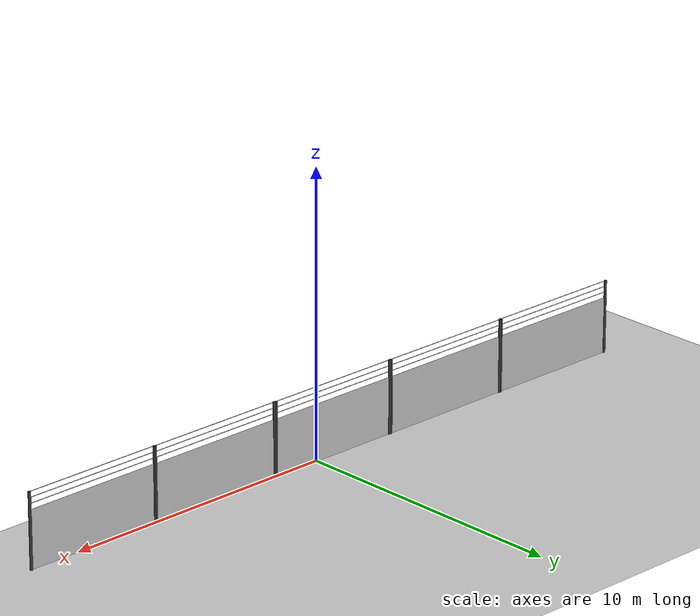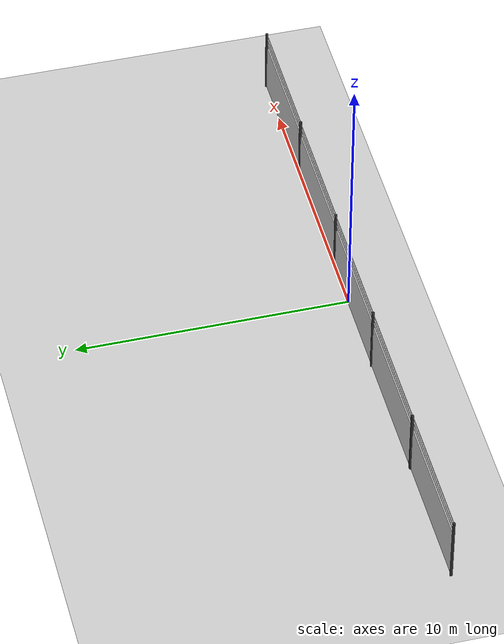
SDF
<sdf version="1.7">
 <world name="default">
  <light name="sun" type="directional">
   <pose>0 0 10 0 -0 0</pose>
   <diffuse>0.8 0.8 0.8 1</diffuse>
   <specular>0.2 0.2 0.2 1</specular>
   <attenuation>
    <range>1000</range>
    <constant>0.9</constant>
    <linear>0.01</linear>
    <quadratic>0.001</quadratic>
   </attenuation>
   <direction>-0.5 0.1 -0.9</direction>
   <spot><inner_angle>0</inner_angle><outer_angle>0</outer_angle><falloff>0</falloff></spot>
  </light>
  <model name="ground_plane">
   <static>1</static>
   <link name="link">
    <collision name="collision">
     <geometry><plane><normal>0 0 1</normal><size>100 100</size></plane></geometry>
     <surface>
      <contact><collide_bitmask>65535</collide_bitmask></contact>
      <friction><ode><mu>100</mu><mu2>50</mu2></ode></friction>
     </surface>
    </collision>
    <visual name="visual">
     <cast_shadows>0</cast_shadows>
     <geometry><plane><normal>0 0 1</normal><size>100 100</size></plane></geometry>
     <material>
      <script><uri>file://media/materials/scripts/gazebo.material</uri><name>Gazebo/Grey</name></script>
     </material>
    </visual>
   </link>
  </model>
  <gravity>0 0 -9.8</gravity>
  <magnetic_field>6e-06 2.3e-05 -4.2e-05</magnetic_field>
  <atmosphere type="adiabatic"/>
  <physics type="ode">
   <max_step_size>0.001</max_step_size>
   <real_time_factor>1</real_time_factor>
   <real_time_update_rate>1000</real_time_update_rate>
  </physics>
  <scene><ambient>0.4 0.4 0.4 1</ambient><background>0.7 0.7 0.7 1</background><shadows>1</shadows></scene>
  <spherical_coordinates>
   <surface_model>EARTH_WGS84</surface_model>
   <latitude_deg>0</latitude_deg>
   <longitude_deg>0</longitude_deg>
   <elevation>0</elevation>
   <heading_deg>0</heading_deg>
  </spherical_coordinates>
  <model name="army_fence">
   <static>1</static>
   <link name="fence_link">
    <visual name="fence_panel">
     <geometry><plane><normal>0 0 1</normal><size>5 2</size></plane></geometry>
     <pose>0 0 1 1.57 -0 0</pose>
     <material>
      <script><uri>file://media/materials/scripts/gazebo.material</uri><name>Gazebo/ChainlinkFence</name></script>
     </material>
    </visual>
    <visual name="pole_left">
     <geometry><cylinder><radius>0.05</radius><length>2.6</length></cylinder></geometry>
     <pose>-2.5 0 1.3 0 -0 0</pose>
     <material><ambient>0.2 0.2 0.2 1</ambient><diffuse>0.2 0.2 0.2 1</diffuse></material>
    </visual>
    <visual name="pole_right">
     <geometry><cylinder><radius>0.05</radius><length>2.6</length></cylinder></geometry>
     <pose>2.5 0 1.3 0 -0 0</pose>
     <material><ambient>0.2 0.2 0.2 1</ambient><diffuse>0.2 0.2 0.2 1</diffuse></material>
    </visual>
    <visual name="wire1">
     <geometry><cylinder><radius>0.01</radius><length>5</length></cylinder></geometry>
     <pose>0 0 2.2 0 1.57 0</pose>
    </visual>
    <visual name="wire2">
     <geometry><cylinder><radius>0.01</radius><length>5</length></cylinder></geometry>
     <pose>0 0 2.4 0 1.57 0</pose>
    </visual>
    <visual name="wire3">
     <geometry><cylinder><radius>0.01</radius><length>5</length></cylinder></geometry>
     <pose>0 0 2.6 0 1.57 0</pose>
    </visual>
   </link>
   <pose>-0.714606 0.037039 0 0 -0 0</pose>
  </model>
  <model name="army_fence_0">
   <static>1</static>
   <link name="fence_link">
    <visual name="fence_panel">
     <geometry><plane><normal>0 0 1</normal><size>5 2</size></plane></geometry>
     <pose>0 0 1 1.57 -0 0</pose>
     <material>
      <script><uri>file://media/materials/scripts/gazebo.material</uri><name>Gazebo/ChainlinkFence</name></script>
     </material>
    </visual>
    <visual name="pole_left">
     <geometry><cylinder><radius>0.05</radius><length>2.6</length></cylinder></geometry>
     <pose>-2.5 0 1.3 0 -0 0</pose>
     <material><ambient>0.2 0.2 0.2 1</ambient><diffuse>0.2 0.2 0.2 1</diffuse></material>
    </visual>
    <visual name="pole_right">
     <geometry><cylinder><radius>0.05</radius><length>2.6</length></cylinder></geometry>
     <pose>2.5 0 1.3 0 -0 0</pose>
     <material><ambient>0.2 0.2 0.2 1</ambient><diffuse>0.2 0.2 0.2 1</diffuse></material>
    </visual>
    <visual name="wire1">
     <geometry><cylinder><radius>0.01</radius><length>5</length></cylinder></geometry>
     <pose>0 0 2.2 0 1.57 0</pose>
    </visual>
    <visual name="wire2">
     <geometry><cylinder><radius>0.01</radius><length>5</length></cylinder></geometry>
     <pose>0 0 2.4 0 1.57 0</pose>
    </visual>
    <visual name="wire3">
     <geometry><cylinder><radius>0.01</radius><length>5</length></cylinder></geometry>
     <pose>0 0 2.6 0 1.57 0</pose>
    </visual>
   </link>
   <pose>-5.76195 0.045889 0 0 -0 0</pose>
  </model>
  <model name="army_fence_2">
   <static>1</static>
   <link name="fence_link">
    <visual name="fence_panel">
     <geometry><plane><normal>0 0 1</normal><size>5 2</size></plane></geometry>
     <pose>0 0 1 1.57 -0 0</pose>
     <material>
      <script><uri>file://media/materials/scripts/gazebo.material</uri><name>Gazebo/ChainlinkFence</name></script>
     </material>
    </visual>
    <visual name="pole_left">
     <geometry><cylinder><radius>0.05</radius><length>2.6</length></cylinder></geometry>
     <pose>-2.5 0 1.3 0 -0 0</pose>
     <material><ambient>0.2 0.2 0.2 1</ambient><diffuse>0.2 0.2 0.2 1</diffuse></material>
    </visual>
    <visual name="pole_right">
     <geometry><cylinder><radius>0.05</radius><length>2.6</length></cylinder></geometry>
     <pose>2.5 0 1.3 0 -0 0</pose>
     <material><ambient>0.2 0.2 0.2 1</ambient><diffuse>0.2 0.2 0.2 1</diffuse></material>
    </visual>
    <visual name="wire1">
     <geometry><cylinder><radius>0.01</radius><length>5</length></cylinder></geometry>
     <pose>0 0 2.2 0 1.57 0</pose>
    </visual>
    <visual name="wire2">
     <geometry><cylinder><radius>0.01</radius><length>5</length></cylinder></geometry>
     <pose>0 0 2.4 0 1.57 0</pose>
    </visual>
    <visual name="wire3">
     <geometry><cylinder><radius>0.01</radius><length>5</length></cylinder></geometry>
     <pose>0 0 2.6 0 1.57 0</pose>
    </visual>
   </link>
   <pose>4.3332 0.024484 0 0 -0 0</pose>
  </model>
  <model name="army_fence_3">
   <static>1</static>
   <link name="fence_link">
    <visual name="fence_panel">
     <geometry><plane><normal>0 0 1</normal><size>5 2</size></plane></geometry>
     <pose>0 0 1 1.57 -0 0</pose>
     <material>
      <script><uri>file://media/materials/scripts/gazebo.material</uri><name>Gazebo/ChainlinkFence</name></script>
     </material>
    </visual>
    <visual name="pole_left">
     <geometry><cylinder><radius>0.05</radius><length>2.6</length></cylinder></geometry>
     <pose>-2.5 0 1.3 0 -0 0</pose>
     <material><ambient>0.2 0.2 0.2 1</ambient><diffuse>0.2 0.2 0.2 1</diffuse></material>
    </visual>
    <visual name="pole_right">
     <geometry><cylinder><radius>0.05</radius><length>2.6</length></cylinder></geometry>
     <pose>2.5 0 1.3 0 -0 0</pose>
     <material><ambient>0.2 0.2 0.2 1</ambient><diffuse>0.2 0.2 0.2 1</diffuse></material>
    </visual>
    <visual name="wire1">
     <geometry><cylinder><radius>0.01</radius><length>5</length></cylinder></geometry>
     <pose>0 0 2.2 0 1.57 0</pose>
    </visual>
    <visual name="wire2">
     <geometry><cylinder><radius>0.01</radius><length>5</length></cylinder></geometry>
     <pose>0 0 2.4 0 1.57 0</pose>
    </visual>
    <visual name="wire3">
     <geometry><cylinder><radius>0.01</radius><length>5</length></cylinder></geometry>
     <pose>0 0 2.6 0 1.57 0</pose>
    </visual>
   </link>
   <pose>9.35452 0.008052 0 0 -0 0</pose>
  </model>
  <model name="army_fence_1">
   <static>1</static>
   <link name="fence_link">
    <visual name="fence_panel">
     <geometry><plane><normal>0 0 1</normal><size>5 2</size></plane></geometry>
     <pose>0 0 1 1.57 -0 0</pose>
     <material>
      <script><uri>file://media/materials/scripts/gazebo.material</uri><name>Gazebo/ChainlinkFence</name></script>
     </material>
    </visual>
    <visual name="pole_left">
     <geometry><cylinder><radius>0.05</radius><length>2.6</length></cylinder></geometry>
     <pose>-2.5 0 1.3 0 -0 0</pose>
     <material><ambient>0.2 0.2 0.2 1</ambient><diffuse>0.2 0.2 0.2 1</diffuse></material>
    </visual>
    <visual name="pole_right">
     <geometry><cylinder><radius>0.05</radius><length>2.6</length></cylinder></geometry>
     <pose>2.5 0 1.3 0 -0 0</pose>
     <material><ambient>0.2 0.2 0.2 1</ambient><diffuse>0.2 0.2 0.2 1</diffuse></material>
    </visual>
    <visual name="wire1">
     <geometry><cylinder><radius>0.01</radius><length>5</length></cylinder></geometry>
     <pose>0 0 2.2 0 1.57 0</pose>
    </visual>
    <visual name="wire2">
     <geometry><cylinder><radius>0.01</radius><length>5</length></cylinder></geometry>
     <pose>0 0 2.4 0 1.57 0</pose>
    </visual>
    <visual name="wire3">
     <geometry><cylinder><radius>0.01</radius><length>5</length></cylinder></geometry>
     <pose>0 0 2.6 0 1.57 0</pose>
    </visual>
   </link>
   <pose>-10.8103 0.041211 0 0 -0 0</pose>
  </model>
 </world>
</sdf>
